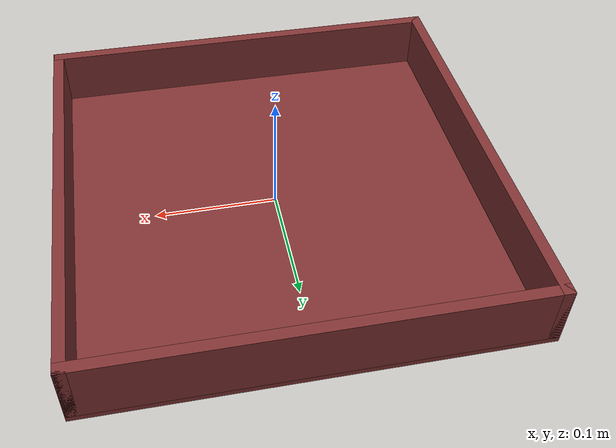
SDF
<?xml version="1.0" ?>
<!-- |    This document was autogenerated by xmacro from model.sdf.xmacro              | -->
<!-- |    EDITING THIS FILE BY HAND IS NOT RECOMMENDED                                 | -->
<sdf version="1.6">
	<!-- basket parameters -->
	<!-- end user defined parameters -->
	<!-- macro block to paste material properties -->
	<!-- macro block to paste friction properties -->
	<!-- macro block to paste inertial properties-->
	<!-- macro block to paste a fixed joint to 'base'-->
	<!-- macro block to construct a link-->
	<!-- create the basket -->
	<model name="basket">
		<link name="base">
			<pose>0.0 0.0 0.0 0 0 0</pose>
			<inertial>
				<mass>0.2</mass>
				<inertia>
					<ixx>0.0001</ixx>
					<iyy>0.0001</iyy>
					<izz>0.0001</izz>
					<ixy>0</ixy>
					<ixz>0</ixz>
					<iyz>0</iyz>
				</inertia>
			</inertial>
			<visual name="base_visual">
				<geometry>
					<box>
						<size>0.35 0.35 0.009</size>
					</box>
				</geometry>
				<material>
					<emissive>0 0 0 1</emissive>
					<ambient>0.5 0.2 0.2 1</ambient>
					<diffuse>0.5 0.2 0.2 1</diffuse>
					<specular>0.01 0.01 0.01 1</specular>
				</material>
			</visual>
			<collision name="base_collision">
				<geometry>
					<box>
						<size>0.35 0.35 0.009</size>
					</box>
				</geometry>
				<surface>
					<friction>
						<ode>
							<mu>10.0</mu>
							<mu2>10.0</mu2>
						</ode>
					</friction>
				</surface>
			</collision>
		</link>
		<link name="x1">
			<pose>0.17049999999999998 0.0 0.025 0 0 0</pose>
			<inertial>
				<mass>0.2</mass>
				<inertia>
					<ixx>0.0001</ixx>
					<iyy>0.0001</iyy>
					<izz>0.0001</izz>
					<ixy>0</ixy>
					<ixz>0</ixz>
					<iyz>0</iyz>
				</inertia>
			</inertial>
			<visual name="x1_visual">
				<geometry>
					<box>
						<size>0.009 0.35 0.05</size>
					</box>
				</geometry>
				<material>
					<emissive>0 0 0 1</emissive>
					<ambient>0.5 0.2 0.2 1</ambient>
					<diffuse>0.5 0.2 0.2 1</diffuse>
					<specular>0.01 0.01 0.01 1</specular>
				</material>
			</visual>
			<collision name="x1_collision">
				<geometry>
					<box>
						<size>0.009 0.35 0.05</size>
					</box>
				</geometry>
				<surface>
					<friction>
						<ode>
							<mu>10.0</mu>
							<mu2>10.0</mu2>
						</ode>
					</friction>
				</surface>
			</collision>
		</link>
		<joint name="x1_joint" type="fixed">
			<parent>base</parent>
			<child>x1</child>
		</joint>
		<link name="x2">
			<pose>-0.17049999999999998 0.0 0.025 0 0 0</pose>
			<inertial>
				<mass>0.2</mass>
				<inertia>
					<ixx>0.0001</ixx>
					<iyy>0.0001</iyy>
					<izz>0.0001</izz>
					<ixy>0</ixy>
					<ixz>0</ixz>
					<iyz>0</iyz>
				</inertia>
			</inertial>
			<visual name="x2_visual">
				<geometry>
					<box>
						<size>0.009 0.35 0.05</size>
					</box>
				</geometry>
				<material>
					<emissive>0 0 0 1</emissive>
					<ambient>0.5 0.2 0.2 1</ambient>
					<diffuse>0.5 0.2 0.2 1</diffuse>
					<specular>0.01 0.01 0.01 1</specular>
				</material>
			</visual>
			<collision name="x2_collision">
				<geometry>
					<box>
						<size>0.009 0.35 0.05</size>
					</box>
				</geometry>
				<surface>
					<friction>
						<ode>
							<mu>10.0</mu>
							<mu2>10.0</mu2>
						</ode>
					</friction>
				</surface>
			</collision>
		</link>
		<joint name="x2_joint" type="fixed">
			<parent>base</parent>
			<child>x2</child>
		</joint>
		<link name="y1">
			<pose>0.0 0.17049999999999998 0.025 0 0 0</pose>
			<inertial>
				<mass>0.2</mass>
				<inertia>
					<ixx>0.0001</ixx>
					<iyy>0.0001</iyy>
					<izz>0.0001</izz>
					<ixy>0</ixy>
					<ixz>0</ixz>
					<iyz>0</iyz>
				</inertia>
			</inertial>
			<visual name="y1_visual">
				<geometry>
					<box>
						<size>0.35 0.009 0.05</size>
					</box>
				</geometry>
				<material>
					<emissive>0 0 0 1</emissive>
					<ambient>0.5 0.2 0.2 1</ambient>
					<diffuse>0.5 0.2 0.2 1</diffuse>
					<specular>0.01 0.01 0.01 1</specular>
				</material>
			</visual>
			<collision name="y1_collision">
				<geometry>
					<box>
						<size>0.35 0.009 0.05</size>
					</box>
				</geometry>
				<surface>
					<friction>
						<ode>
							<mu>10.0</mu>
							<mu2>10.0</mu2>
						</ode>
					</friction>
				</surface>
			</collision>
		</link>
		<joint name="y1_joint" type="fixed">
			<parent>base</parent>
			<child>y1</child>
		</joint>
		<link name="y2">
			<pose>0.0 -0.17049999999999998 0.025 0 0 0</pose>
			<inertial>
				<mass>0.2</mass>
				<inertia>
					<ixx>0.0001</ixx>
					<iyy>0.0001</iyy>
					<izz>0.0001</izz>
					<ixy>0</ixy>
					<ixz>0</ixz>
					<iyz>0</iyz>
				</inertia>
			</inertial>
			<visual name="y2_visual">
				<geometry>
					<box>
						<size>0.35 0.009 0.05</size>
					</box>
				</geometry>
				<material>
					<emissive>0 0 0 1</emissive>
					<ambient>0.5 0.2 0.2 1</ambient>
					<diffuse>0.5 0.2 0.2 1</diffuse>
					<specular>0.01 0.01 0.01 1</specular>
				</material>
			</visual>
			<collision name="y2_collision">
				<geometry>
					<box>
						<size>0.35 0.009 0.05</size>
					</box>
				</geometry>
				<surface>
					<friction>
						<ode>
							<mu>10.0</mu>
							<mu2>10.0</mu2>
						</ode>
					</friction>
				</surface>
			</collision>
		</link>
		<joint name="y2_joint" type="fixed">
			<parent>base</parent>
			<child>y2</child>
		</joint>
	</model>
</sdf>
